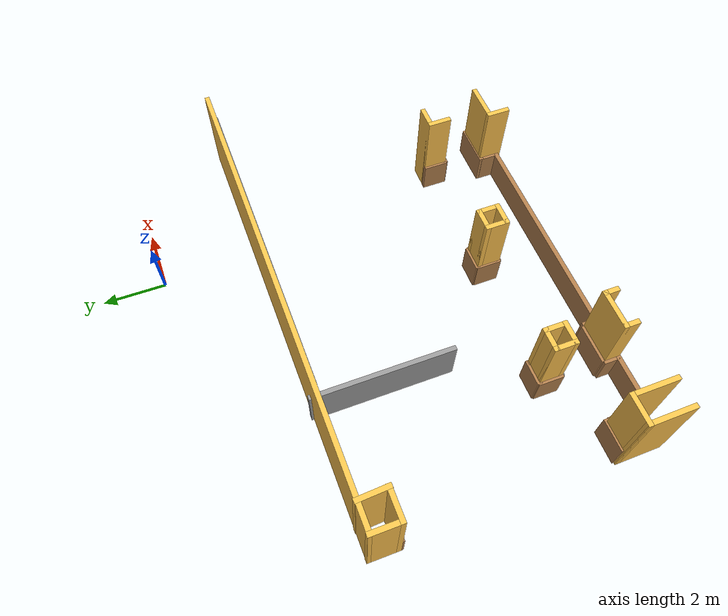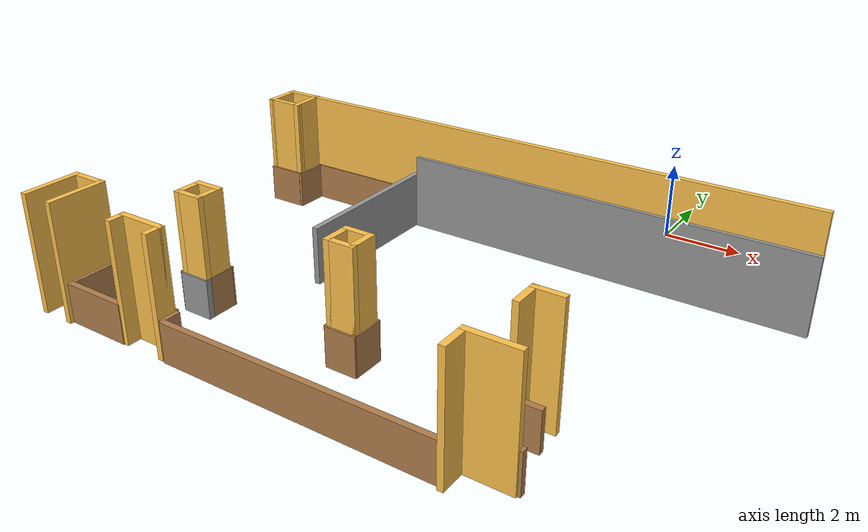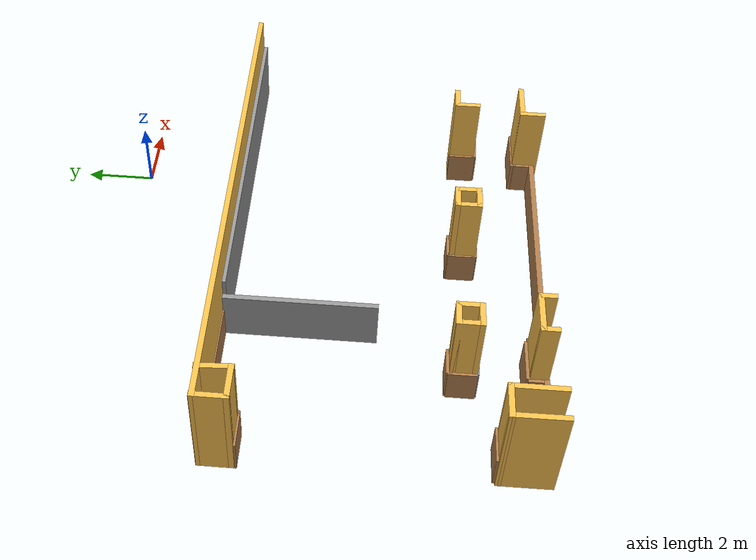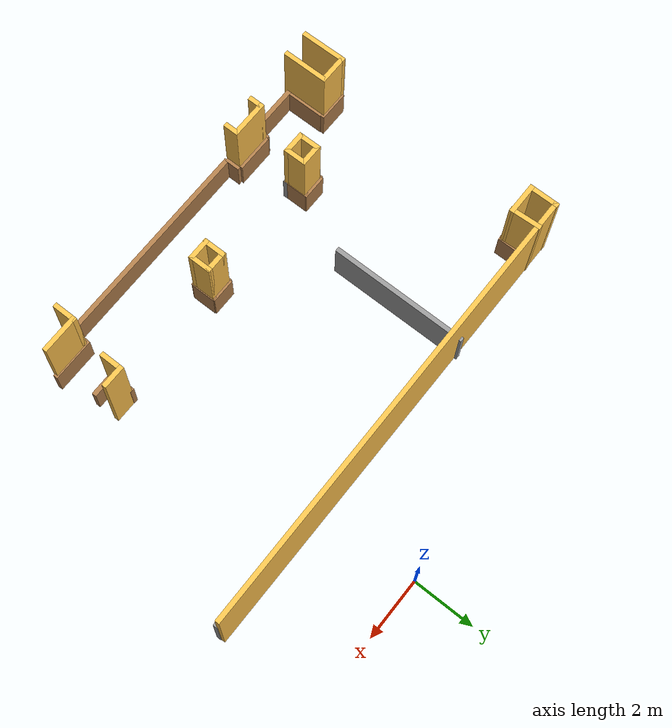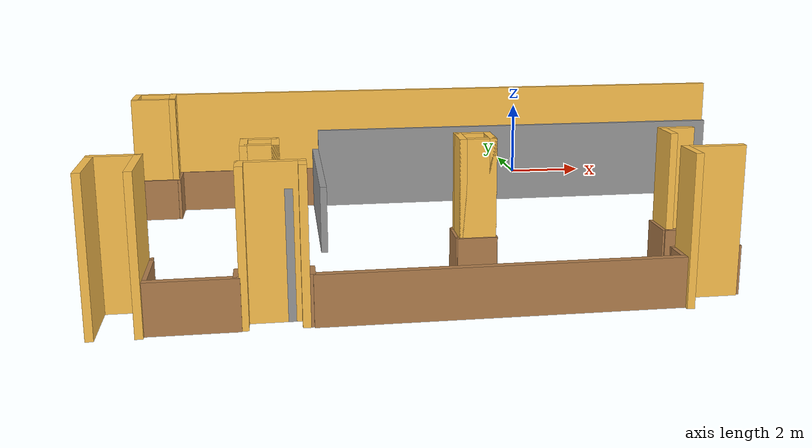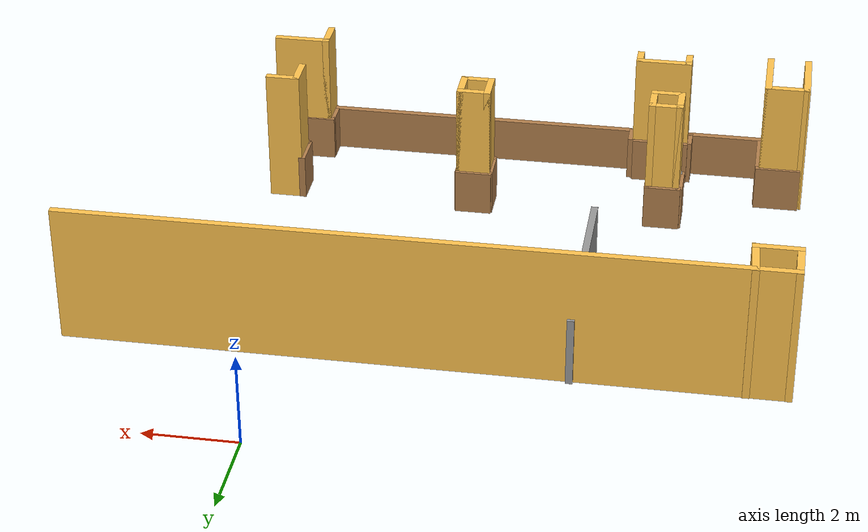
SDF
<sdf version="1.6">
 <model name="costa-gv">
  <pose>1.97685 -3.58664 0 0 -0 0</pose>
  <link name="Wall_10">
   <collision name="Wall_10_Collision">
    <geometry><box><size>15 0.15 3</size></box></geometry>
    <pose>0 0 1.5 0 -0 0</pose>
   </collision>
   <visual name="Wall_10_Visual">
    <pose>0 0 1.5 0 -0 0</pose>
    <geometry><box><size>15 0.15 3</size></box></geometry>
    <material>
     <script><uri>file://media/materials/scripts/gazebo.material</uri><name>Gazebo/Grey</name></script>
     <ambient>1 0.764706 0.305882 1</ambient>
    </material>
    <meta><layer>0</layer></meta>
   </visual>
   <pose>-4.93585 0.471568 0 0 -0 -3.14024</pose>
  </link>
  <link name="Wall_103">
   <collision name="Wall_103_Collision">
    <geometry><box><size>3.4811 0.15 1</size></box></geometry>
    <pose>0 0 0.5 0 -0 0</pose>
   </collision>
   <visual name="Wall_103_Visual">
    <pose>0 0 0.5 0 -0 0</pose>
    <geometry><box><size>3.4811 0.15 1</size></box></geometry>
    <material>
     <script><uri>file://media/materials/scripts/gazebo.material</uri><name>Gazebo/Wood</name></script>
     <ambient>1 1 1 1</ambient>
    </material>
    <meta><layer>0</layer></meta>
   </visual>
   <pose>-9.76907 0.427453 0 0 -0 3.14152</pose>
  </link>
  <link name="Wall_108">
   <collision name="Wall_108_Collision">
    <geometry><box><size>1 0.15 1</size></box></geometry>
    <pose>0 0 0.5 0 -0 0</pose>
   </collision>
   <visual name="Wall_108_Visual">
    <pose>0 0 0.5 0 -0 0</pose>
    <geometry><box><size>1 0.15 1</size></box></geometry>
    <material>
     <script><uri>file://media/materials/scripts/gazebo.material</uri><name>Gazebo/Wood</name></script>
     <ambient>1 1 1 1</ambient>
    </material>
    <meta><layer>0</layer></meta>
   </visual>
   <pose>-11.4344 -0.007502 0 0 -0 -1.5708</pose>
  </link>
  <link name="Wall_117">
   <collision name="Wall_117_Collision">
    <geometry><box><size>1 0.15 1</size></box></geometry>
    <pose>0 0 0.5 0 -0 0</pose>
   </collision>
   <visual name="Wall_117_Visual">
    <pose>0 0 0.5 0 -0 0</pose>
    <geometry><box><size>1 0.15 1</size></box></geometry>
    <material>
     <script><uri>file://media/materials/scripts/gazebo.material</uri><name>Gazebo/Wood</name></script>
     <ambient>1 1 1 1</ambient>
    </material>
    <meta><layer>0</layer></meta>
   </visual>
   <pose>-11.9319 -0.439362 0 0 -0 0</pose>
  </link>
  <link name="Wall_122">
   <collision name="Wall_122_Collision">
    <geometry><box><size>1 0.15 1</size></box></geometry>
    <pose>0 0 0.5 0 -0 0</pose>
   </collision>
   <visual name="Wall_122_Visual">
    <pose>0 0 0.5 0 -0 0</pose>
    <geometry><box><size>1 0.15 1</size></box></geometry>
    <material>
     <script><uri>file://media/materials/scripts/gazebo.material</uri><name>Gazebo/Wood</name></script>
     <ambient>1 1 1 1</ambient>
    </material>
    <meta><layer>0</layer></meta>
   </visual>
   <pose>-11.8018 -7.05636 0 0 -0 0</pose>
  </link>
  <link name="Wall_124">
   <collision name="Wall_124_Collision">
    <geometry><box><size>1.25 0.15 1</size></box></geometry>
    <pose>0 0 0.5 0 -0 0</pose>
   </collision>
   <visual name="Wall_124_Visual">
    <pose>0 0 0.5 0 -0 0</pose>
    <geometry><box><size>1.25 0.15 1</size></box></geometry>
    <material>
     <script><uri>file://media/materials/scripts/gazebo.material</uri><name>Gazebo/Wood</name></script>
     <ambient>1 1 1 1</ambient>
    </material>
    <meta><layer>0</layer></meta>
   </visual>
   <pose>-11.3608 -7.72636 0 0 -0 -1.5708</pose>
  </link>
  <link name="Wall_126">
   <collision name="Wall_126_Collision">
    <geometry><box><size>1.75 0.15 1</size></box></geometry>
    <pose>0 0 0.5 0 -0 0</pose>
   </collision>
   <visual name="Wall_126_Visual">
    <pose>0 0 0.5 0 -0 0</pose>
    <geometry><box><size>1.75 0.15 1</size></box></geometry>
    <material>
     <script><uri>file://media/materials/scripts/gazebo.material</uri><name>Gazebo/Wood</name></script>
     <ambient>1 1 1 1</ambient>
    </material>
    <meta><layer>0</layer></meta>
   </visual>
   <pose>-10.5508 -8.37536 0 0 -0 0</pose>
  </link>
  <link name="Wall_128">
   <collision name="Wall_128_Collision">
    <geometry><box><size>1.25 0.15 1</size></box></geometry>
    <pose>0 0 0.5 0 -0 0</pose>
   </collision>
   <visual name="Wall_128_Visual">
    <pose>0 0 0.5 0 -0 0</pose>
    <geometry><box><size>1.25 0.15 1</size></box></geometry>
    <material>
     <script><uri>file://media/materials/scripts/gazebo.material</uri><name>Gazebo/Wood</name></script>
     <ambient>1 1 1 1</ambient>
    </material>
    <meta><layer>0</layer></meta>
   </visual>
   <pose>-9.08885 -7.91136 0 0 -0 0</pose>
  </link>
  <link name="Wall_130">
   <collision name="Wall_130_Collision">
    <geometry><box><size>0.5 0.15 1</size></box></geometry>
    <pose>0 0 0.5 0 -0 0</pose>
   </collision>
   <visual name="Wall_130_Visual">
    <pose>0 0 0.5 0 -0 0</pose>
    <geometry><box><size>0.5 0.15 1</size></box></geometry>
    <material>
     <script><uri>file://media/materials/scripts/gazebo.material</uri><name>Gazebo/Wood</name></script>
     <ambient>1 1 1 1</ambient>
    </material>
    <meta><layer>0</layer></meta>
   </visual>
   <pose>-8.42085 -8.15736 0 0 -0 -1.5708</pose>
  </link>
  <link name="Wall_132">
   <collision name="Wall_132_Collision">
    <geometry><box><size>0.5 0.15 1</size></box></geometry>
    <pose>0 0 0.5 0 -0 0</pose>
   </collision>
   <visual name="Wall_132_Visual">
    <pose>0 0 0.5 0 -0 0</pose>
    <geometry><box><size>0.5 0.15 1</size></box></geometry>
    <material>
     <script><uri>file://media/materials/scripts/gazebo.material</uri><name>Gazebo/Wood</name></script>
     <ambient>1 1 1 1</ambient>
    </material>
    <meta><layer>0</layer></meta>
   </visual>
   <pose>-9.72985 -8.13736 0 0 -0 -1.5708</pose>
  </link>
  <link name="Wall_134">
   <collision name="Wall_134_Collision">
    <geometry><box><size>7 0.15 1</size></box></geometry>
    <pose>0 0 0.5 0 -0 0</pose>
   </collision>
   <visual name="Wall_134_Visual">
    <pose>0 0 0.5 0 -0 0</pose>
    <geometry><box><size>7 0.15 1</size></box></geometry>
    <material>
     <script><uri>file://media/materials/scripts/gazebo.material</uri><name>Gazebo/Wood</name></script>
     <ambient>1 1 1 1</ambient>
    </material>
    <meta><layer>0</layer></meta>
   </visual>
   <pose>-4.89485 -8.37536 0 0 -0 0</pose>
  </link>
  <link name="Wall_137">
   <collision name="Wall_137_Collision">
    <geometry><box><size>0.5 0.15 1</size></box></geometry>
    <pose>0 0 0.5 0 -0 0</pose>
   </collision>
   <visual name="Wall_137_Visual">
    <pose>0 0 0.5 0 -0 0</pose>
    <geometry><box><size>0.5 0.15 1</size></box></geometry>
    <material>
     <script><uri>file://media/materials/scripts/gazebo.material</uri><name>Gazebo/Wood</name></script>
     <ambient>1 1 1 1</ambient>
    </material>
    <meta><layer>0</layer></meta>
   </visual>
   <pose>-1.42185 -8.07636 0 0 -0 -1.5708</pose>
  </link>
  <link name="Wall_141">
   <collision name="Wall_141_Collision">
    <geometry><box><size>0.8 0.15 1</size></box></geometry>
    <pose>0 0 0.5 0 -0 0</pose>
   </collision>
   <visual name="Wall_141_Visual">
    <pose>0 0 0.5 0 -0 0</pose>
    <geometry><box><size>0.8 0.15 1</size></box></geometry>
    <material>
     <script><uri>file://media/materials/scripts/gazebo.material</uri><name>Gazebo/Grey</name></script>
     <ambient>1 1 1 1</ambient>
    </material>
    <meta><layer>0</layer></meta>
   </visual>
   <pose>-9.29371 -6.54229 0 0 -0 0</pose>
  </link>
  <link name="Wall_146">
   <collision name="Wall_146_Collision">
    <geometry><box><size>0.8 0.15 1</size></box></geometry>
    <pose>0 0 0.5 0 -0 0</pose>
   </collision>
   <visual name="Wall_146_Visual">
    <pose>0 0 0.5 0 -0 0</pose>
    <geometry><box><size>0.8 0.15 1</size></box></geometry>
    <material>
     <script><uri>file://media/materials/scripts/gazebo.material</uri><name>Gazebo/Wood</name></script>
     <ambient>1 1 1 1</ambient>
    </material>
    <meta><layer>0</layer></meta>
   </visual>
   <pose>-9.30375 -5.81726 0 0 -0 0</pose>
  </link>
  <link name="Wall_148">
   <collision name="Wall_148_Collision">
    <geometry><box><size>0.8 0.15 1</size></box></geometry>
    <pose>0 0 0.5 0 -0 0</pose>
   </collision>
   <visual name="Wall_148_Visual">
    <pose>0 0 0.5 0 -0 0</pose>
    <geometry><box><size>0.8 0.15 1</size></box></geometry>
    <material>
     <script><uri>file://media/materials/scripts/gazebo.material</uri><name>Gazebo/Wood</name></script>
     <ambient>1 1 1 1</ambient>
    </material>
    <meta><layer>0</layer></meta>
   </visual>
   <pose>-8.9742 -6.19261 0 0 -0 -1.5708</pose>
  </link>
  <link name="Wall_150">
   <collision name="Wall_150_Collision">
    <geometry><box><size>0.8 0.15 1</size></box></geometry>
    <pose>0 0 0.5 0 -0 0</pose>
   </collision>
   <visual name="Wall_150_Visual">
    <pose>0 0 0.5 0 -0 0</pose>
    <geometry><box><size>0.8 0.15 1</size></box></geometry>
    <material>
     <script><uri>file://media/materials/scripts/gazebo.material</uri><name>Gazebo/Wood</name></script>
     <ambient>1 1 1 1</ambient>
    </material>
    <meta><layer>0</layer></meta>
   </visual>
   <pose>-9.66903 -6.18254 0 0 -0 -1.5708</pose>
  </link>
  <link name="Wall_152">
   <collision name="Wall_152_Collision">
    <geometry><box><size>0.8 0.15 1</size></box></geometry>
    <pose>0 0 0.5 0 -0 0</pose>
   </collision>
   <visual name="Wall_152_Visual">
    <pose>0 0 0.5 0 -0 0</pose>
    <geometry><box><size>0.8 0.15 1</size></box></geometry>
    <material>
     <script><uri>file://media/materials/scripts/gazebo.material</uri><name>Gazebo/Wood</name></script>
     <ambient>1 1 1 1</ambient>
    </material>
    <meta><layer>0</layer></meta>
   </visual>
   <pose>-5.07028 -6.54841 0 0 -0 0</pose>
  </link>
  <link name="Wall_154">
   <collision name="Wall_154_Collision">
    <geometry><box><size>0.8 0.15 1</size></box></geometry>
    <pose>0 0 0.5 0 -0 0</pose>
   </collision>
   <visual name="Wall_154_Visual">
    <pose>0 0 0.5 0 -0 0</pose>
    <geometry><box><size>0.8 0.15 1</size></box></geometry>
    <material>
     <script><uri>file://media/materials/scripts/gazebo.material</uri><name>Gazebo/Wood</name></script>
     <ambient>1 1 1 1</ambient>
    </material>
    <meta><layer>0</layer></meta>
   </visual>
   <pose>-5.07028 -5.82927 0 0 -0 0</pose>
  </link>
  <link name="Wall_156">
   <collision name="Wall_156_Collision">
    <geometry><box><size>0.8 0.15 1</size></box></geometry>
    <pose>0 0 0.5 0 -0 0</pose>
   </collision>
   <visual name="Wall_156_Visual">
    <pose>0 0 0.5 0 -0 0</pose>
    <geometry><box><size>0.8 0.15 1</size></box></geometry>
    <material>
     <script><uri>file://media/materials/scripts/gazebo.material</uri><name>Gazebo/Wood</name></script>
     <ambient>1 1 1 1</ambient>
    </material>
    <meta><layer>0</layer></meta>
   </visual>
   <pose>-4.7294 -6.19422 0 0 -0 -1.5708</pose>
  </link>
  <link name="Wall_158">
   <collision name="Wall_158_Collision">
    <geometry><box><size>0.8 0.15 1</size></box></geometry>
    <pose>0 0 0.5 0 -0 0</pose>
   </collision>
   <visual name="Wall_158_Visual">
    <pose>0 0 0.5 0 -0 0</pose>
    <geometry><box><size>0.8 0.15 1</size></box></geometry>
    <material>
     <script><uri>file://media/materials/scripts/gazebo.material</uri><name>Gazebo/Wood</name></script>
     <ambient>1 1 1 1</ambient>
    </material>
    <meta><layer>0</layer></meta>
   </visual>
   <pose>-5.42191 -6.19422 0 0 -0 -1.5708</pose>
  </link>
  <link name="Wall_160">
   <collision name="Wall_160_Collision">
    <geometry><box><size>1.4 0.15 1</size></box></geometry>
    <pose>0 0 0.5 0 -0 0</pose>
   </collision>
   <visual name="Wall_160_Visual">
    <pose>0 0 0.5 0 -0 0</pose>
    <geometry><box><size>1.4 0.15 1</size></box></geometry>
    <material>
     <script><uri>file://media/materials/scripts/gazebo.material</uri><name>Gazebo/Wood</name></script>
     <ambient>1 1 1 1</ambient>
    </material>
    <meta><layer>0</layer></meta>
   </visual>
   <pose>-0.788355 -7.81357 0 0 -0 0</pose>
  </link>
  <link name="Wall_167">
   <collision name="Wall_167_Collision">
    <geometry><box><size>0.8 0.15 1</size></box></geometry>
    <pose>0 0 0.5 0 -0 0</pose>
   </collision>
   <visual name="Wall_167_Visual">
    <pose>0 0 0.5 0 -0 0</pose>
    <geometry><box><size>0.8 0.15 1</size></box></geometry>
    <material>
     <script><uri>file://media/materials/scripts/gazebo.material</uri><name>Gazebo/Wood</name></script>
     <ambient>1 1 1 1</ambient>
    </material>
    <meta><layer>0</layer></meta>
   </visual>
   <pose>-1.13366 -6.23417 0 0 -0 -1.5708</pose>
  </link>
  <link name="Wall_171">
   <collision name="Wall_171_Collision">
    <geometry><box><size>0.8 0.15 1</size></box></geometry>
    <pose>0 0 0.5 0 -0 0</pose>
   </collision>
   <visual name="Wall_171_Visual">
    <pose>0 0 0.5 0 -0 0</pose>
    <geometry><box><size>0.8 0.15 1</size></box></geometry>
    <material>
     <script><uri>file://media/materials/scripts/gazebo.material</uri><name>Gazebo/Wood</name></script>
     <ambient>1 1 1 1</ambient>
    </material>
    <meta><layer>0</layer></meta>
   </visual>
   <pose>-0.768707 -6.60168 0 0 -0 0</pose>
  </link>
  <link name="Wall_20">
   <collision name="Wall_20_Collision">
    <geometry><box><size>0.75 0.15 3</size></box></geometry>
    <pose>0 0 1.5 0 -0 0</pose>
   </collision>
   <visual name="Wall_20_Visual">
    <pose>0 0 1.5 0 -0 0</pose>
    <geometry><box><size>0.75 0.15 3</size></box></geometry>
    <material>
     <script><uri>file://media/materials/scripts/gazebo.material</uri><name>Gazebo/Grey</name></script>
     <ambient>1 0.764706 0.305882 1</ambient>
    </material>
    <meta><layer>0</layer></meta>
   </visual>
   <pose>-9.28985 -5.90136 0 0 -0 0</pose>
  </link>
  <link name="Wall_21">
   <collision name="Wall_21_Collision">
    <geometry><box><size>0.75 0.15 3</size></box></geometry>
    <pose>0 0 1.5 0 -0 0</pose>
   </collision>
   <visual name="Wall_21_Visual">
    <pose>0 0 1.5 0 -0 0</pose>
    <geometry><box><size>0.75 0.15 3</size></box></geometry>
    <material>
     <script><uri>file://media/materials/scripts/gazebo.material</uri><name>Gazebo/Grey</name></script>
     <ambient>1 0.764706 0.305882 1</ambient>
    </material>
    <meta><layer>0</layer></meta>
   </visual>
   <pose>-8.98985 -6.20136 0 0 -0 -1.5708</pose>
  </link>
  <link name="Wall_219">
   <collision name="Wall_219_Collision">
    <geometry><box><size>10.5 0.15 2</size></box></geometry>
    <pose>0 0 1 0 -0 0</pose>
   </collision>
   <visual name="Wall_219_Visual">
    <pose>0 0 1 0 -0 0</pose>
    <geometry><box><size>10.5 0.15 2</size></box></geometry>
    <material>
     <script><uri>file://media/materials/scripts/gazebo.material</uri><name>Gazebo/Grey</name></script>
     <ambient>1 1 1 1</ambient>
    </material>
    <meta><layer>0</layer></meta>
   </visual>
   <pose>-2.66326 0.365931 0 0 -0 3.14159</pose>
  </link>
  <link name="Wall_22">
   <collision name="Wall_22_Collision">
    <geometry><box><size>0.75 0.15 3</size></box></geometry>
    <pose>0 0 1.5 0 -0 0</pose>
   </collision>
   <visual name="Wall_22_Visual">
    <pose>0 0 1.5 0 -0 0</pose>
    <geometry><box><size>0.75 0.15 3</size></box></geometry>
    <material>
     <script><uri>file://media/materials/scripts/gazebo.material</uri><name>Gazebo/Grey</name></script>
     <ambient>1 0.764706 0.305882 1</ambient>
    </material>
    <meta><layer>0</layer></meta>
   </visual>
   <pose>-9.28985 -6.50136 0 0 -0 3.14159</pose>
  </link>
  <link name="Wall_23">
   <collision name="Wall_23_Collision">
    <geometry><box><size>0.75 0.15 3</size></box></geometry>
    <pose>0 0 1.5 0 -0 0</pose>
   </collision>
   <visual name="Wall_23_Visual">
    <pose>0 0 1.5 0 -0 0</pose>
    <geometry><box><size>0.75 0.15 3</size></box></geometry>
    <material>
     <script><uri>file://media/materials/scripts/gazebo.material</uri><name>Gazebo/Grey</name></script>
     <ambient>1 0.764706 0.305882 1</ambient>
    </material>
    <meta><layer>0</layer></meta>
   </visual>
   <pose>-9.58985 -6.20136 0 0 -0 1.5708</pose>
  </link>
  <link name="Wall_25">
   <collision name="Wall_25_Collision">
    <geometry><box><size>0.75 0.15 3</size></box></geometry>
    <pose>0 0 1.5 0 -0 0</pose>
   </collision>
   <visual name="Wall_25_Visual">
    <pose>0 0 1.5 0 -0 0</pose>
    <geometry><box><size>0.75 0.15 3</size></box></geometry>
    <material>
     <script><uri>file://media/materials/scripts/gazebo.material</uri><name>Gazebo/Grey</name></script>
     <ambient>1 0.764706 0.305882 1</ambient>
    </material>
    <meta><layer>0</layer></meta>
   </visual>
   <pose>-5.05985 -5.90136 0 0 -0 0</pose>
  </link>
  <link name="Wall_26">
   <collision name="Wall_26_Collision">
    <geometry><box><size>0.75 0.15 3</size></box></geometry>
    <pose>0 0 1.5 0 -0 0</pose>
   </collision>
   <visual name="Wall_26_Visual">
    <pose>0 0 1.5 0 -0 0</pose>
    <geometry><box><size>0.75 0.15 3</size></box></geometry>
    <material>
     <script><uri>file://media/materials/scripts/gazebo.material</uri><name>Gazebo/Grey</name></script>
     <ambient>1 0.764706 0.305882 1</ambient>
    </material>
    <meta><layer>0</layer></meta>
   </visual>
   <pose>-4.75985 -6.20136 0 0 -0 -1.5708</pose>
  </link>
  <link name="Wall_29">
   <collision name="Wall_29_Collision">
    <geometry><box><size>0.75 0.15 3</size></box></geometry>
    <pose>0 0 1.5 0 -0 0</pose>
   </collision>
   <visual name="Wall_29_Visual">
    <pose>0 0 1.5 0 -0 0</pose>
    <geometry><box><size>0.75 0.15 3</size></box></geometry>
    <material>
     <script><uri>file://media/materials/scripts/gazebo.material</uri><name>Gazebo/Grey</name></script>
     <ambient>1 0.764706 0.305882 1</ambient>
    </material>
    <meta><layer>0</layer></meta>
   </visual>
   <pose>-5.35985 -6.20136 0 0 -0 -1.5708</pose>
  </link>
  <link name="Wall_30">
   <collision name="Wall_30_Collision">
    <geometry><box><size>0.75 0.15 3</size></box></geometry>
    <pose>0 0 1.5 0 -0 0</pose>
   </collision>
   <visual name="Wall_30_Visual">
    <pose>0 0 1.5 0 -0 0</pose>
    <geometry><box><size>0.75 0.15 3</size></box></geometry>
    <material>
     <script><uri>file://media/materials/scripts/gazebo.material</uri><name>Gazebo/Grey</name></script>
     <ambient>1 0.764706 0.305882 1</ambient>
    </material>
    <meta><layer>0</layer></meta>
   </visual>
   <pose>-5.05985 -6.50136 0 0 -0 0</pose>
  </link>
  <link name="Wall_32">
   <collision name="Wall_32_Collision">
    <geometry><box><size>0.75 0.15 3</size></box></geometry>
    <pose>0 0 1.5 0 -0 0</pose>
   </collision>
   <visual name="Wall_32_Visual">
    <pose>0 0 1.5 0 -0 0</pose>
    <geometry><box><size>0.75 0.15 3</size></box></geometry>
    <material>
     <script><uri>file://media/materials/scripts/gazebo.material</uri><name>Gazebo/Grey</name></script>
     <ambient>1 0.764706 0.305882 1</ambient>
    </material>
    <meta><layer>0</layer></meta>
   </visual>
   <pose>-0.759848 -5.92136 0 0 -0 0</pose>
  </link>
  <link name="Wall_35">
   <collision name="Wall_35_Collision">
    <geometry><box><size>0.75 0.15 3</size></box></geometry>
    <pose>0 0 1.5 0 -0 0</pose>
   </collision>
   <visual name="Wall_35_Visual">
    <pose>0 0 1.5 0 -0 0</pose>
    <geometry><box><size>0.75 0.15 3</size></box></geometry>
    <material>
     <script><uri>file://media/materials/scripts/gazebo.material</uri><name>Gazebo/Grey</name></script>
     <ambient>1 0.764706 0.305882 1</ambient>
    </material>
    <meta><layer>0</layer></meta>
   </visual>
   <pose>-1.05985 -6.22136 0 0 -0 1.5708</pose>
  </link>
  <link name="Wall_62">
   <collision name="Wall_62_Collision">
    <geometry><box><size>1.49162 0.15 3</size></box></geometry>
    <pose>0 0 1.5 0 -0 0</pose>
   </collision>
   <visual name="Wall_62_Visual">
    <pose>0 0 1.5 0 -0 0</pose>
    <geometry><box><size>1.49162 0.15 3</size></box></geometry>
    <material>
     <script><uri>file://media/materials/scripts/gazebo.material</uri><name>Gazebo/Grey</name></script>
     <ambient>1 0.764706 0.305882 1</ambient>
    </material>
    <meta><layer>0</layer></meta>
   </visual>
   <pose>-12.2913 -7.78886 0 0 -0 -1.56259</pose>
  </link>
  <link name="Wall_64">
   <collision name="Wall_64_Collision">
    <geometry><box><size>1 0.15 3</size></box></geometry>
    <pose>0 0 1.5 0 -0 0</pose>
   </collision>
   <visual name="Wall_64_Visual">
    <pose>0 0 1.5 0 -0 0</pose>
    <geometry><box><size>1 0.15 3</size></box></geometry>
    <material>
     <script><uri>file://media/materials/scripts/gazebo.material</uri><name>Gazebo/Grey</name></script>
     <ambient>1 0.764706 0.305882 1</ambient>
    </material>
    <meta><layer>0</layer></meta>
   </visual>
   <pose>-11.8718 -7.11836 0 0 -0 0</pose>
  </link>
  <link name="Wall_65">
   <collision name="Wall_65_Collision">
    <geometry><box><size>1.5 0.15 3</size></box></geometry>
    <pose>0 0 1.5 0 -0 0</pose>
   </collision>
   <visual name="Wall_65_Visual">
    <pose>0 0 1.5 0 -0 0</pose>
    <geometry><box><size>1.5 0.15 3</size></box></geometry>
    <material>
     <script><uri>file://media/materials/scripts/gazebo.material</uri><name>Gazebo/Grey</name></script>
     <ambient>1 0.764706 0.305882 1</ambient>
    </material>
    <meta><layer>0</layer></meta>
   </visual>
   <pose>-11.4468 -7.79336 0 0 -0 -1.5708</pose>
  </link>
  <link name="Wall_67">
   <collision name="Wall_67_Collision">
    <geometry><box><size>0.5 0.15 3</size></box></geometry>
    <pose>0 0 1.5 0 -0 0</pose>
   </collision>
   <visual name="Wall_67_Visual">
    <pose>0 0 1.5 0 -0 0</pose>
    <geometry><box><size>0.5 0.15 3</size></box></geometry>
    <material>
     <script><uri>file://media/materials/scripts/gazebo.material</uri><name>Gazebo/Grey</name></script>
     <ambient>1 0.764706 0.305882 1</ambient>
    </material>
    <meta><layer>0</layer></meta>
   </visual>
   <pose>-9.62785 -8.17636 0 0 -0 1.5708</pose>
  </link>
  <link name="Wall_69">
   <collision name="Wall_69_Collision">
    <geometry><box><size>0.15 0.15 2.5</size></box></geometry>
    <pose>0 0 1.25 0 -0 0</pose>
   </collision>
   <visual name="Wall_69_Visual">
    <pose>0 0 1.25 0 -0 0</pose>
    <geometry><box><size>0.15 0.15 2.5</size></box></geometry>
    <material>
     <script><uri>file://media/materials/scripts/gazebo.material</uri><name>Gazebo/Grey</name></script>
     <ambient>1 1 1 1</ambient>
    </material>
    <meta><layer>0</layer></meta>
   </visual>
   <pose>-8.77792 -8.00156 0 0 -0 0</pose>
  </link>
  <link name="Wall_70">
   <collision name="Wall_70_Collision">
    <geometry><box><size>0.15 0.15 2.5</size></box></geometry>
    <pose>0 0 1.25 0 -0 0</pose>
   </collision>
   <visual name="Wall_70_Visual">
    <pose>0 0 1.25 0 -0 0</pose>
    <geometry><box><size>0.15 0.15 2.5</size></box></geometry>
    <material>
     <script><uri>file://media/materials/scripts/gazebo.material</uri><name>Gazebo/Grey</name></script>
     <ambient>1 1 1 1</ambient>
    </material>
    <meta><layer>0</layer></meta>
   </visual>
   <pose>-8.77792 -8.00156 0 0 -0 0</pose>
  </link>
  <link name="Wall_71">
   <collision name="Wall_71_Collision">
    <geometry><box><size>0.15 0.15 2.5</size></box></geometry>
    <pose>0 0 1.25 0 -0 0</pose>
   </collision>
   <visual name="Wall_71_Visual">
    <pose>0 0 1.25 0 -0 0</pose>
    <geometry><box><size>0.15 0.15 2.5</size></box></geometry>
    <material>
     <script><uri>file://media/materials/scripts/gazebo.material</uri><name>Gazebo/Grey</name></script>
     <ambient>1 1 1 1</ambient>
    </material>
    <meta><layer>0</layer></meta>
   </visual>
   <pose>-8.77792 -8.00156 0 0 -0 0</pose>
  </link>
  <link name="Wall_73">
   <collision name="Wall_73_Collision">
    <geometry><box><size>1.25 0.15 3</size></box></geometry>
    <pose>0 0 1.5 0 -0 0</pose>
   </collision>
   <visual name="Wall_73_Visual">
    <pose>0 0 1.5 0 -0 0</pose>
    <geometry><box><size>1.25 0.15 3</size></box></geometry>
    <material>
     <script><uri>file://media/materials/scripts/gazebo.material</uri><name>Gazebo/Grey</name></script>
     <ambient>1 0.764706 0.305882 1</ambient>
    </material>
    <meta><layer>0</layer></meta>
   </visual>
   <pose>-9.07785 -8.00136 0 0 -0 0</pose>
  </link>
  <link name="Wall_74">
   <collision name="Wall_74_Collision">
    <geometry><box><size>0.5 0.15 3</size></box></geometry>
    <pose>0 0 1.5 0 -0 0</pose>
   </collision>
   <visual name="Wall_74_Visual">
    <pose>0 0 1.5 0 -0 0</pose>
    <geometry><box><size>0.5 0.15 3</size></box></geometry>
    <material>
     <script><uri>file://media/materials/scripts/gazebo.material</uri><name>Gazebo/Grey</name></script>
     <ambient>1 0.764706 0.305882 1</ambient>
    </material>
    <meta><layer>0</layer></meta>
   </visual>
   <pose>-8.52785 -8.17636 0 0 -0 -1.5708</pose>
  </link>
  <link name="Wall_76">
   <collision name="Wall_76_Collision">
    <geometry><box><size>0.75 0.15 3</size></box></geometry>
    <pose>0 0 1.5 0 -0 0</pose>
   </collision>
   <visual name="Wall_76_Visual">
    <pose>0 0 1.5 0 -0 0</pose>
    <geometry><box><size>0.75 0.15 3</size></box></geometry>
    <material>
     <script><uri>file://media/materials/scripts/gazebo.material</uri><name>Gazebo/Grey</name></script>
     <ambient>1 0.764706 0.305882 1</ambient>
    </material>
    <meta><layer>0</layer></meta>
   </visual>
   <pose>-1.33185 -8.15836 0 0 -0 1.5708</pose>
  </link>
  <link name="Wall_77">
   <collision name="Wall_77_Collision">
    <geometry><box><size>1.25 0.15 3</size></box></geometry>
    <pose>0 0 1.5 0 -0 0</pose>
   </collision>
   <visual name="Wall_77_Visual">
    <pose>0 0 1.5 0 -0 0</pose>
    <geometry><box><size>1.25 0.15 3</size></box></geometry>
    <material>
     <script><uri>file://media/materials/scripts/gazebo.material</uri><name>Gazebo/Grey</name></script>
     <ambient>1 0.764706 0.305882 1</ambient>
    </material>
    <meta><layer>0</layer></meta>
   </visual>
   <pose>-0.781848 -7.85836 0 0 -0 0</pose>
  </link>
  <link name="Wall_88">
   <collision name="Wall_88_Collision">
    <geometry><box><size>1 0.15 3</size></box></geometry>
    <pose>0 0 1.5 0 -0 0</pose>
   </collision>
   <visual name="Wall_88_Visual">
    <pose>0 0 1.5 0 -0 0</pose>
    <geometry><box><size>1 0.15 3</size></box></geometry>
    <material>
     <script><uri>file://media/materials/scripts/gazebo.material</uri><name>Gazebo/Grey</name></script>
     <ambient>1 0.764706 0.305882 1</ambient>
    </material>
    <meta><layer>0</layer></meta>
   </visual>
   <pose>-12.3608 0.046568 0 0 -0 -1.5708</pose>
  </link>
  <link name="Wall_89">
   <collision name="Wall_89_Collision">
    <geometry><box><size>1.04028 0.15 3</size></box></geometry>
    <pose>0 0 1.5 0 -0 0</pose>
   </collision>
   <visual name="Wall_89_Visual">
    <pose>0 0 1.5 0 -0 0</pose>
    <geometry><box><size>1.04028 0.15 3</size></box></geometry>
    <material>
     <script><uri>file://media/materials/scripts/gazebo.material</uri><name>Gazebo/Grey</name></script>
     <ambient>1 0.764706 0.305882 1</ambient>
    </material>
    <meta><layer>0</layer></meta>
   </visual>
   <pose>-11.9157 -0.378432 0 0 -0 0</pose>
  </link>
  <link name="Wall_90">
   <collision name="Wall_90_Collision">
    <geometry><box><size>1.02107 0.15 3</size></box></geometry>
    <pose>0 0 1.5 0 -0 0</pose>
   </collision>
   <visual name="Wall_90_Visual">
    <pose>0 0 1.5 0 -0 0</pose>
    <geometry><box><size>1.02107 0.15 3</size></box></geometry>
    <material>
     <script><uri>file://media/materials/scripts/gazebo.material</uri><name>Gazebo/Grey</name></script>
     <ambient>1 0.764706 0.305882 1</ambient>
    </material>
    <meta><layer>0</layer></meta>
   </visual>
   <pose>-11.4907 0.046568 0 0 -0 1.61705</pose>
  </link>
  <link name="Wall_94">
   <collision name="Wall_94_Collision">
    <geometry><box><size>4.5 0.15 1.5</size></box></geometry>
    <pose>0 0 0.75 0 -0 0</pose>
   </collision>
   <visual name="Wall_94_Visual">
    <pose>0 0 0.75 0 -0 0</pose>
    <geometry><box><size>4.5 0.15 1.5</size></box></geometry>
    <material>
     <script><uri>file://media/materials/scripts/gazebo.material</uri><name>Gazebo/Grey</name></script>
     <ambient>0 0 0 1</ambient>
    </material>
    <meta><layer>0</layer></meta>
   </visual>
   <pose>-7.99085 -1.63536 0 0 -0 -1.5708</pose>
  </link>
  <static>1</static>
 </model>
</sdf>
